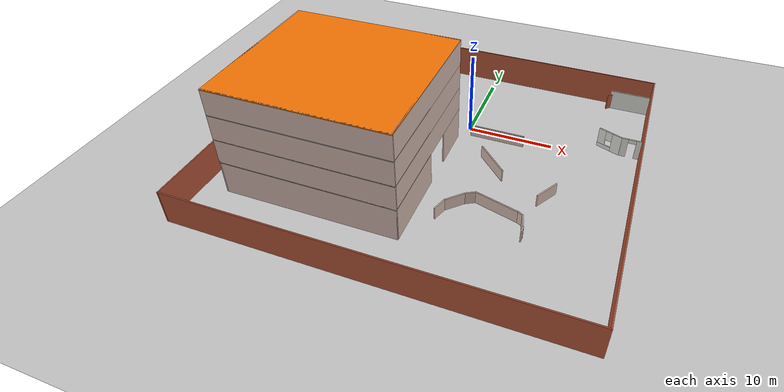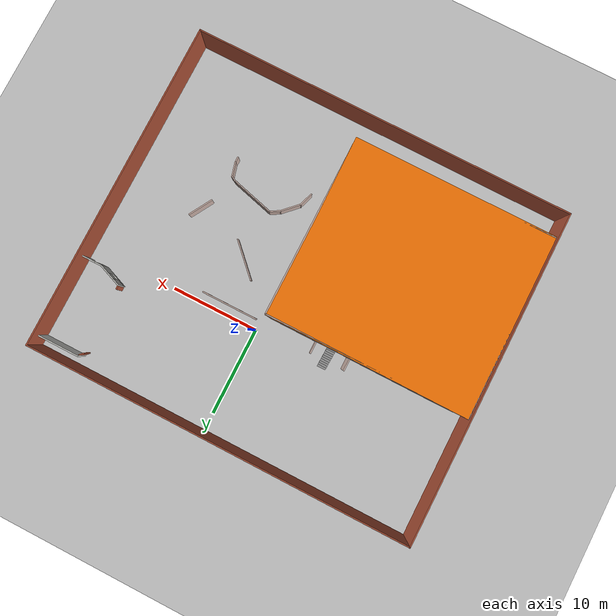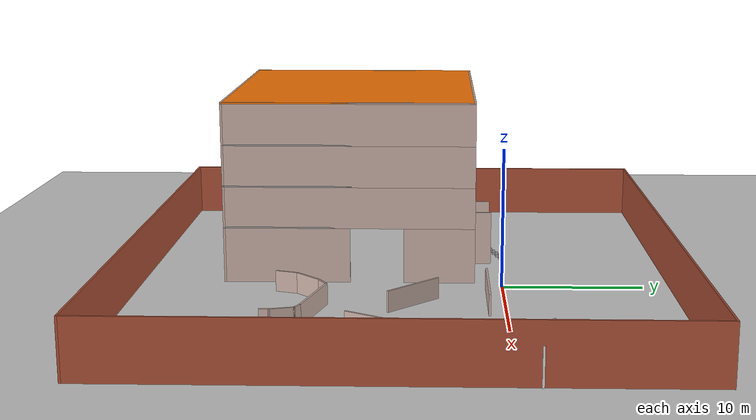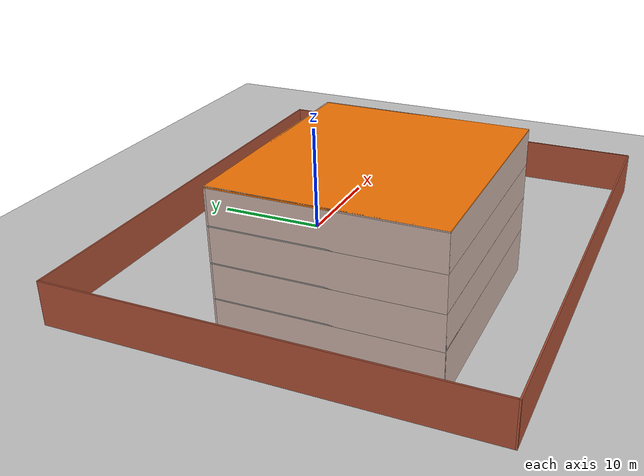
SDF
<sdf version="1.7">
 <world name="default">
  <model name="ground_plane">
   <static>1</static>
   <link name="link">
    <collision name="collision">
     <geometry><plane><normal>0 0 1</normal><size>100 100</size></plane></geometry>
     <surface><friction><ode><mu>100</mu><mu2>50</mu2></ode></friction></surface>
    </collision>
    <visual name="visual">
     <cast_shadows>0</cast_shadows>
     <geometry><plane><normal>0 0 1</normal><size>100 100</size></plane></geometry>
     <material>
      <script><uri>file://media/materials/scripts/gazebo.material</uri><name>Gazebo/Grey</name></script>
     </material>
    </visual>
   </link>
  </model>
  <model name="building2">
   <pose>-11 -10.325 0 0 -0 0</pose>
   <link name="Floor_0">
    <collision name="Floor_0_Collision">
     <geometry><box><size>20.15 18.15 0.1</size></box></geometry>
     <pose>0 0 0.05 0 -0 0</pose>
    </collision>
    <visual name="Floor_0_Visual">
     <pose>0 0 0.05 0 -0 0</pose>
     <geometry><box><size>20.15 18.15 0.1</size></box></geometry>
     <material>
      <script><uri>file://media/materials/scripts/gazebo.material</uri><name>Gazebo/Grey</name></script>
      <ambient>1 1 1 1</ambient>
     </material>
     <meta><layer>1</layer></meta>
    </visual>
    <pose>-0 -0.675 4 0 -0 0</pose>
   </link>
   <link name="Floor_2">
    <collision name="Floor_2_Collision">
     <geometry><box><size>20.15 18.15 0.1</size></box></geometry>
     <pose>0 0 0.05 0 -0 0</pose>
    </collision>
    <visual name="Floor_2_Visual">
     <pose>0 0 0.05 0 -0 0</pose>
     <geometry><box><size>20.15 18.15 0.1</size></box></geometry>
     <material>
      <script><uri>file://media/materials/scripts/gazebo.material</uri><name>Gazebo/Grey</name></script>
      <ambient>1 1 1 1</ambient>
     </material>
     <meta><layer>2</layer></meta>
    </visual>
    <pose>-0 -0.675 7 0 -0 0</pose>
   </link>
   <link name="Floor_3">
    <collision name="Floor_3_Collision">
     <geometry><box><size>20.15 18.15 0.1</size></box></geometry>
     <pose>0 0 0.05 0 -0 0</pose>
    </collision>
    <visual name="Floor_3_Visual">
     <pose>0 0 0.05 0 -0 0</pose>
     <geometry><box><size>20.15 18.15 0.1</size></box></geometry>
     <material>
      <script><uri>file://media/materials/scripts/gazebo.material</uri><name>Gazebo/Grey</name></script>
      <ambient>1 1 1 1</ambient>
     </material>
     <meta><layer>3</layer></meta>
    </visual>
    <pose>-0 -0.675 10 0 -0 0</pose>
   </link>
   <link name="Floor_8">
    <collision name="Floor_8_Collision">
     <geometry><box><size>20.15 18.15 0.1</size></box></geometry>
     <pose>0 0 0.05 0 -0 0</pose>
    </collision>
    <visual name="Floor_8_Visual">
     <pose>0 0 0.05 0 -0 0</pose>
     <geometry><box><size>20.15 18.15 0.1</size></box></geometry>
     <material>
      <script><uri>file://media/materials/scripts/gazebo.material</uri><name>Gazebo/Grey</name></script>
      <ambient>0.996078 0.47451 0.0196078 1</ambient>
     </material>
     <meta><layer>4</layer></meta>
    </visual>
    <pose>-0 -0.675 13 0 -0 0</pose>
   </link>
   <link name="Wall_11">
    <collision name="Wall_11_Collision">
     <geometry><box><size>1.5 0.15 4</size></box></geometry>
     <pose>0 0 2 0 -0 0</pose>
    </collision>
    <visual name="Wall_11_Visual">
     <pose>0 0 2 0 -0 0</pose>
     <geometry><box><size>1.5 0.15 4</size></box></geometry>
     <material>
      <script><uri>file://media/materials/scripts/gazebo.material</uri><name>Gazebo/Grey</name></script>
      <ambient>0.760784 0.662745 0.627451 1</ambient>
     </material>
     <meta><layer>0</layer></meta>
    </visual>
    <pose>0.8 9 0 0 -0 -1.5708</pose>
   </link>
   <link name="Wall_12">
    <collision name="Wall_12_Collision">
     <geometry><box><size>10.95 0.15 4</size></box></geometry>
     <pose>0 0 2 0 -0 0</pose>
    </collision>
    <visual name="Wall_12_Visual">
     <pose>0 0 2 0 -0 0</pose>
     <geometry><box><size>10.95 0.15 4</size></box></geometry>
     <material>
      <script><uri>file://media/materials/scripts/gazebo.material</uri><name>Gazebo/Grey</name></script>
      <ambient>0.760784 0.662745 0.627451 1</ambient>
     </material>
     <meta><layer>0</layer></meta>
    </visual>
    <pose>-4.6 8.325 0 0 -0 3.14159</pose>
   </link>
   <link name="Wall_14">
    <collision name="Wall_14_Collision">
     <geometry><box><size>18.15 0.15 4</size></box></geometry>
     <pose>0 0 2 0 -0 0</pose>
    </collision>
    <visual name="Wall_14_Visual">
     <pose>0 0 2 0 -0 0</pose>
     <geometry><box><size>18.15 0.15 4</size></box></geometry>
     <material>
      <script><uri>file://media/materials/scripts/gazebo.material</uri><name>Gazebo/Grey</name></script>
      <ambient>0.760784 0.662745 0.627451 1</ambient>
     </material>
     <meta><layer>0</layer></meta>
    </visual>
    <pose>-10 -0.675 0 0 -0 -1.5708</pose>
   </link>
   <link name="Wall_16">
    <collision name="Wall_16_Collision">
     <geometry><box><size>20.15 0.15 4</size></box></geometry>
     <pose>0 0 2 0 -0 0</pose>
    </collision>
    <visual name="Wall_16_Visual">
     <pose>0 0 2 0 -0 0</pose>
     <geometry><box><size>20.15 0.15 4</size></box></geometry>
     <material>
      <script><uri>file://media/materials/scripts/gazebo.material</uri><name>Gazebo/Grey</name></script>
      <ambient>0.760784 0.662745 0.627451 1</ambient>
     </material>
     <meta><layer>0</layer></meta>
    </visual>
    <pose>-0 -9.675 0 0 -0 0</pose>
   </link>
   <link name="Wall_24">
    <collision name="Wall_24_Collision">
     <geometry><box><size>18.15 0.15 3</size></box></geometry>
     <pose>0 0 1.5 0 -0 0</pose>
    </collision>
    <visual name="Wall_24_Visual">
     <pose>0 0 1.5 0 -0 0</pose>
     <geometry><box><size>18.15 0.15 3</size></box></geometry>
     <material>
      <script><uri>file://media/materials/scripts/gazebo.material</uri><name>Gazebo/Grey</name></script>
      <ambient>0.760784 0.662745 0.627451 1</ambient>
     </material>
     <meta><layer>1</layer></meta>
    </visual>
    <pose>-10 -0.675 4 0 -0 -1.5708</pose>
   </link>
   <link name="Wall_25">
    <collision name="Wall_25_Collision">
     <geometry><box><size>20.15 0.15 3</size></box></geometry>
     <pose>0 0 1.5 0 -0 0</pose>
    </collision>
    <visual name="Wall_25_Visual">
     <pose>0 0 1.5 0 -0 0</pose>
     <geometry><box><size>20.15 0.15 3</size></box></geometry>
     <material>
      <script><uri>file://media/materials/scripts/gazebo.material</uri><name>Gazebo/Grey</name></script>
      <ambient>0.760784 0.662745 0.627451 1</ambient>
     </material>
     <meta><layer>1</layer></meta>
    </visual>
    <pose>-0 -9.675 4 0 -0 0</pose>
   </link>
   <link name="Wall_31">
    <collision name="Wall_31_Collision">
     <geometry><box><size>20.15 0.15 3</size></box></geometry>
     <pose>0 0 1.5 0 -0 0</pose>
    </collision>
    <visual name="Wall_31_Visual">
     <pose>0 0 1.5 0 -0 0</pose>
     <geometry><box><size>20.15 0.15 3</size></box></geometry>
     <material>
      <script><uri>file://media/materials/scripts/gazebo.material</uri><name>Gazebo/Grey</name></script>
      <ambient>0.760784 0.662745 0.627451 1</ambient>
     </material>
     <meta><layer>1</layer></meta>
    </visual>
    <pose>-0 8.325 4 0 -0 0</pose>
   </link>
   <link name="Wall_33">
    <collision name="Wall_33_Collision">
     <geometry><box><size>18 0.15 3</size></box></geometry>
     <pose>0 0 1.5 0 -0 0</pose>
    </collision>
    <visual name="Wall_33_Visual">
     <pose>0 0 1.5 0 -0 0</pose>
     <geometry><box><size>18 0.15 3</size></box></geometry>
     <material>
      <script><uri>file://media/materials/scripts/gazebo.material</uri><name>Gazebo/Grey</name></script>
      <ambient>0.760784 0.662745 0.627451 1</ambient>
     </material>
     <meta><layer>1</layer></meta>
    </visual>
    <pose>10 -0.6 4 0 -0 -1.5708</pose>
   </link>
   <link name="Wall_4">
    <collision name="Wall_4_Collision">
     <geometry><box><size>5.15 0.15 4</size></box></geometry>
     <pose>0 0 2 0 -0 0</pose>
    </collision>
    <visual name="Wall_4_Visual">
     <pose>0 0 2 0 -0 0</pose>
     <geometry><box><size>5.15 0.15 4</size></box></geometry>
     <material>
      <script><uri>file://media/materials/scripts/gazebo.material</uri><name>Gazebo/Grey</name></script>
      <ambient>0.760784 0.662745 0.627451 1</ambient>
     </material>
     <meta><layer>0</layer></meta>
    </visual>
    <pose>10 5.825 0 0 -0 -1.5708</pose>
   </link>
   <link name="Wall_42">
    <collision name="Wall_42_Collision">
     <geometry><box><size>18.15 0.15 3</size></box></geometry>
     <pose>0 0 1.5 0 -0 0</pose>
    </collision>
    <visual name="Wall_42_Visual">
     <pose>0 0 1.5 0 -0 0</pose>
     <geometry><box><size>18.15 0.15 3</size></box></geometry>
     <material>
      <script><uri>file://media/materials/scripts/gazebo.material</uri><name>Gazebo/Grey</name></script>
      <ambient>0.760784 0.662745 0.627451 1</ambient>
     </material>
     <meta><layer>2</layer></meta>
    </visual>
    <pose>-10 -0.675 7 0 -0 -1.5708</pose>
   </link>
   <link name="Wall_43">
    <collision name="Wall_43_Collision">
     <geometry><box><size>20.15 0.15 3</size></box></geometry>
     <pose>0 0 1.5 0 -0 0</pose>
    </collision>
    <visual name="Wall_43_Visual">
     <pose>0 0 1.5 0 -0 0</pose>
     <geometry><box><size>20.15 0.15 3</size></box></geometry>
     <material>
      <script><uri>file://media/materials/scripts/gazebo.material</uri><name>Gazebo/Grey</name></script>
      <ambient>0.760784 0.662745 0.627451 1</ambient>
     </material>
     <meta><layer>2</layer></meta>
    </visual>
    <pose>-0 -9.675 7 0 -0 0</pose>
   </link>
   <link name="Wall_44">
    <collision name="Wall_44_Collision">
     <geometry><box><size>20.15 0.15 3</size></box></geometry>
     <pose>0 0 1.5 0 -0 0</pose>
    </collision>
    <visual name="Wall_44_Visual">
     <pose>0 0 1.5 0 -0 0</pose>
     <geometry><box><size>20.15 0.15 3</size></box></geometry>
     <material>
      <script><uri>file://media/materials/scripts/gazebo.material</uri><name>Gazebo/Grey</name></script>
      <ambient>0.760784 0.662745 0.627451 1</ambient>
     </material>
     <meta><layer>2</layer></meta>
    </visual>
    <pose>-0 8.325 7 0 -0 0</pose>
   </link>
   <link name="Wall_45">
    <collision name="Wall_45_Collision">
     <geometry><box><size>18 0.15 3</size></box></geometry>
     <pose>0 0 1.5 0 -0 0</pose>
    </collision>
    <visual name="Wall_45_Visual">
     <pose>0 0 1.5 0 -0 0</pose>
     <geometry><box><size>18 0.15 3</size></box></geometry>
     <material>
      <script><uri>file://media/materials/scripts/gazebo.material</uri><name>Gazebo/Grey</name></script>
      <ambient>0.760784 0.662745 0.627451 1</ambient>
     </material>
     <meta><layer>2</layer></meta>
    </visual>
    <pose>10 -0.6 7 0 -0 -1.5708</pose>
   </link>
   <link name="Wall_46">
    <collision name="Wall_46_Collision">
     <geometry><box><size>18.15 0.15 3</size></box></geometry>
     <pose>0 0 1.5 0 -0 0</pose>
    </collision>
    <visual name="Wall_46_Visual">
     <pose>0 0 1.5 0 -0 0</pose>
     <geometry><box><size>18.15 0.15 3</size></box></geometry>
     <material>
      <script><uri>file://media/materials/scripts/gazebo.material</uri><name>Gazebo/Grey</name></script>
      <ambient>0.760784 0.662745 0.627451 1</ambient>
     </material>
     <meta><layer>3</layer></meta>
    </visual>
    <pose>-10 -0.675 10 0 -0 -1.5708</pose>
   </link>
   <link name="Wall_47">
    <collision name="Wall_47_Collision">
     <geometry><box><size>20.15 0.15 3</size></box></geometry>
     <pose>0 0 1.5 0 -0 0</pose>
    </collision>
    <visual name="Wall_47_Visual">
     <pose>0 0 1.5 0 -0 0</pose>
     <geometry><box><size>20.15 0.15 3</size></box></geometry>
     <material>
      <script><uri>file://media/materials/scripts/gazebo.material</uri><name>Gazebo/Grey</name></script>
      <ambient>0.760784 0.662745 0.627451 1</ambient>
     </material>
     <meta><layer>3</layer></meta>
    </visual>
    <pose>-0 -9.675 10 0 -0 0</pose>
   </link>
   <link name="Wall_48">
    <collision name="Wall_48_Collision">
     <geometry><box><size>20.15 0.15 3</size></box></geometry>
     <pose>0 0 1.5 0 -0 0</pose>
    </collision>
    <visual name="Wall_48_Visual">
     <pose>0 0 1.5 0 -0 0</pose>
     <geometry><box><size>20.15 0.15 3</size></box></geometry>
     <material>
      <script><uri>file://media/materials/scripts/gazebo.material</uri><name>Gazebo/Grey</name></script>
      <ambient>0.760784 0.662745 0.627451 1</ambient>
     </material>
     <meta><layer>3</layer></meta>
    </visual>
    <pose>-0 8.325 10 0 -0 0</pose>
   </link>
   <link name="Wall_49">
    <collision name="Wall_49_Collision">
     <geometry><box><size>18 0.15 3</size></box></geometry>
     <pose>0 0 1.5 0 -0 0</pose>
    </collision>
    <visual name="Wall_49_Visual">
     <pose>0 0 1.5 0 -0 0</pose>
     <geometry><box><size>18 0.15 3</size></box></geometry>
     <material>
      <script><uri>file://media/materials/scripts/gazebo.material</uri><name>Gazebo/Grey</name></script>
      <ambient>0.760784 0.662745 0.627451 1</ambient>
     </material>
     <meta><layer>3</layer></meta>
    </visual>
    <pose>10 -0.6 10 0 -0 -1.5708</pose>
   </link>
   <link name="Wall_6">
    <collision name="Wall_6_Collision">
     <geometry><box><size>9.15 0.15 4</size></box></geometry>
     <pose>0 0 2 0 -0 0</pose>
    </collision>
    <visual name="Wall_6_Visual">
     <pose>0 0 2 0 -0 0</pose>
     <geometry><box><size>9.15 0.15 4</size></box></geometry>
     <material>
      <script><uri>file://media/materials/scripts/gazebo.material</uri><name>Gazebo/Grey</name></script>
      <ambient>0.760784 0.662745 0.627451 1</ambient>
     </material>
     <meta><layer>0</layer></meta>
    </visual>
    <pose>10 -5.175 0 0 -0 -1.5708</pose>
   </link>
   <link name="Wall_76">
    <collision name="Wall_76_Collision">
     <geometry><box><size>18.15 0.15 0.1</size></box></geometry>
     <pose>0 0 0.05 0 -0 0</pose>
    </collision>
    <visual name="Wall_76_Visual">
     <pose>0 0 0.05 0 -0 0</pose>
     <geometry><box><size>18.15 0.15 0.1</size></box></geometry>
     <material>
      <script><uri>file://media/materials/scripts/gazebo.material</uri><name>Gazebo/Grey</name></script>
      <ambient>0.760784 0.662745 0.627451 1</ambient>
     </material>
     <meta><layer>4</layer></meta>
    </visual>
    <pose>-10 -0.675 13 0 -0 -1.5708</pose>
   </link>
   <link name="Wall_77">
    <collision name="Wall_77_Collision">
     <geometry><box><size>20.15 0.15 0.1</size></box></geometry>
     <pose>0 0 0.05 0 -0 0</pose>
    </collision>
    <visual name="Wall_77_Visual">
     <pose>0 0 0.05 0 -0 0</pose>
     <geometry><box><size>20.15 0.15 0.1</size></box></geometry>
     <material>
      <script><uri>file://media/materials/scripts/gazebo.material</uri><name>Gazebo/Grey</name></script>
      <ambient>0.760784 0.662745 0.627451 1</ambient>
     </material>
     <meta><layer>4</layer></meta>
    </visual>
    <pose>-0 -9.675 13 0 -0 0</pose>
   </link>
   <link name="Wall_78">
    <collision name="Wall_78_Collision">
     <geometry><box><size>20.15 0.15 0.1</size></box></geometry>
     <pose>0 0 0.05 0 -0 0</pose>
    </collision>
    <visual name="Wall_78_Visual">
     <pose>0 0 0.05 0 -0 0</pose>
     <geometry><box><size>20.15 0.15 0.1</size></box></geometry>
     <material>
      <script><uri>file://media/materials/scripts/gazebo.material</uri><name>Gazebo/Grey</name></script>
      <ambient>0.760784 0.662745 0.627451 1</ambient>
     </material>
     <meta><layer>4</layer></meta>
    </visual>
    <pose>-0 8.325 13 0 -0 0</pose>
   </link>
   <link name="Wall_79">
    <collision name="Wall_79_Collision">
     <geometry><box><size>18 0.15 0.1</size></box></geometry>
     <pose>0 0 0.05 0 -0 0</pose>
    </collision>
    <visual name="Wall_79_Visual">
     <pose>0 0 0.05 0 -0 0</pose>
     <geometry><box><size>18 0.15 0.1</size></box></geometry>
     <material>
      <script><uri>file://media/materials/scripts/gazebo.material</uri><name>Gazebo/Grey</name></script>
      <ambient>0.760784 0.662745 0.627451 1</ambient>
     </material>
     <meta><layer>4</layer></meta>
    </visual>
    <pose>10 -0.6 13 0 -0 -1.5708</pose>
   </link>
   <link name="Wall_8">
    <collision name="Wall_8_Collision">
     <geometry><box><size>5.5 0.15 4</size></box></geometry>
     <pose>0 0 2 0 -0 0</pose>
    </collision>
    <visual name="Wall_8_Visual">
     <pose>0 0 2 0 -0 0</pose>
     <geometry><box><size>5.5 0.15 4</size></box></geometry>
     <material>
      <script><uri>file://media/materials/scripts/gazebo.material</uri><name>Gazebo/Grey</name></script>
      <ambient>0.760784 0.662745 0.627451 1</ambient>
     </material>
     <meta><layer>0</layer></meta>
    </visual>
    <pose>7.325 8.325 0 0 -0 3.14159</pose>
   </link>
   <link name="Wall_9">
    <collision name="Wall_9_Collision">
     <geometry><box><size>1.5 0.15 4</size></box></geometry>
     <pose>0 0 2 0 -0 0</pose>
    </collision>
    <visual name="Wall_9_Visual">
     <pose>0 0 2 0 -0 0</pose>
     <geometry><box><size>1.5 0.15 4</size></box></geometry>
     <material>
      <script><uri>file://media/materials/scripts/gazebo.material</uri><name>Gazebo/Grey</name></script>
      <ambient>0.760784 0.662745 0.627451 1</ambient>
     </material>
     <meta><layer>0</layer></meta>
    </visual>
    <pose>4.65 9 0 0 -0 1.5708</pose>
   </link>
   <static>1</static>
  </model>
  <model name="wall11">
   <pose>-2 -7 0 0 -0 0</pose>
   <link name="Wall_0">
    <collision name="Wall_0_Collision">
     <geometry><box><size>44.15 0.15 4</size></box></geometry>
     <pose>0 0 2 0 -0 0</pose>
    </collision>
    <visual name="Wall_0_Visual">
     <pose>0 0 2 0 -0 0</pose>
     <geometry><box><size>44.15 0.15 4</size></box></geometry>
     <material>
      <script><uri>file://media/materials/scripts/gazebo.material</uri><name>Gazebo/Bricks</name></script>
      <ambient>1 1 1 1</ambient>
     </material>
     <meta><layer>0</layer></meta>
    </visual>
    <pose>0 19 0 0 -0 0</pose>
   </link>
   <link name="Wall_2">
    <collision name="Wall_2_Collision">
     <geometry><box><size>38.15 0.15 4</size></box></geometry>
     <pose>0 0 2 0 -0 0</pose>
    </collision>
    <visual name="Wall_2_Visual">
     <pose>0 0 2 0 -0 0</pose>
     <geometry><box><size>38.15 0.15 4</size></box></geometry>
     <material>
      <script><uri>file://media/materials/scripts/gazebo.material</uri><name>Gazebo/Bricks</name></script>
      <ambient>1 1 1 1</ambient>
     </material>
     <meta><layer>0</layer></meta>
    </visual>
    <pose>22 0 0 0 -0 -1.5708</pose>
   </link>
   <link name="Wall_4">
    <collision name="Wall_4_Collision">
     <geometry><box><size>44.15 0.15 4</size></box></geometry>
     <pose>0 0 2 0 -0 0</pose>
    </collision>
    <visual name="Wall_4_Visual">
     <pose>0 0 2 0 -0 0</pose>
     <geometry><box><size>44.15 0.15 4</size></box></geometry>
     <material>
      <script><uri>file://media/materials/scripts/gazebo.material</uri><name>Gazebo/Bricks</name></script>
      <ambient>1 1 1 1</ambient>
     </material>
     <meta><layer>0</layer></meta>
    </visual>
    <pose>0 -19 0 0 -0 3.14159</pose>
   </link>
   <link name="Wall_6">
    <collision name="Wall_6_Collision">
     <geometry><box><size>38.15 0.15 4</size></box></geometry>
     <pose>0 0 2 0 -0 0</pose>
    </collision>
    <visual name="Wall_6_Visual">
     <pose>0 0 2 0 -0 0</pose>
     <geometry><box><size>38.15 0.15 4</size></box></geometry>
     <material>
      <script><uri>file://media/materials/scripts/gazebo.material</uri><name>Gazebo/Bricks</name></script>
      <ambient>1 1 1 1</ambient>
     </material>
     <meta><layer>0</layer></meta>
    </visual>
    <pose>-22 0 0 0 -0 1.5708</pose>
   </link>
   <static>1</static>
  </model>
  <model name="wall12">
   <pose>6.34105 -8.55443 0 0 -0 0</pose>
   <link name="Wall_0">
    <collision name="Wall_0_Collision">
     <geometry><box><size>1.73114 0.15 1.5</size></box></geometry>
     <pose>0 0 0.75 0 -0 0</pose>
    </collision>
    <visual name="Wall_0_Visual">
     <pose>0 0 0.75 0 -0 0</pose>
     <geometry><box><size>1.73114 0.15 1.5</size></box></geometry>
     <material>
      <script><uri>file://media/materials/scripts/gazebo.material</uri><name>Gazebo/Grey</name></script>
      <ambient>0.760784 0.662745 0.627451 1</ambient>
     </material>
     <meta><layer>0</layer></meta>
    </visual>
    <pose>-4.71274 -6.64107 0 0 -0 1.24905</pose>
   </link>
   <link name="Wall_13">
    <collision name="Wall_13_Collision">
     <geometry><box><size>6.5 0.15 1.5</size></box></geometry>
     <pose>0 0 0.75 0 -0 0</pose>
    </collision>
    <visual name="Wall_13_Visual">
     <pose>0 0 0.75 0 -0 0</pose>
     <geometry><box><size>6.5 0.15 1.5</size></box></geometry>
     <material>
      <script><uri>file://media/materials/scripts/gazebo.material</uri><name>Gazebo/Grey</name></script>
      <ambient>0.760784 0.662745 0.627451 1</ambient>
     </material>
     <meta><layer>0</layer></meta>
    </visual>
    <pose>-2.67774 7.41093 0 0 -0 0</pose>
   </link>
   <link name="Wall_15">
    <collision name="Wall_15_Collision">
     <geometry><box><size>4.75 0.15 1.5</size></box></geometry>
     <pose>0 0 0.75 0 -0 0</pose>
    </collision>
    <visual name="Wall_15_Visual">
     <pose>0 0 0.75 0 -0 0</pose>
     <geometry><box><size>4.75 0.15 1.5</size></box></geometry>
     <material>
      <script><uri>file://media/materials/scripts/gazebo.material</uri><name>Gazebo/Grey</name></script>
      <ambient>0.760784 0.662745 0.627451 1</ambient>
     </material>
     <meta><layer>0</layer></meta>
    </visual>
    <pose>-1.78524 2.28593 0 0 -0 -0.785244</pose>
   </link>
   <link name="Wall_2">
    <collision name="Wall_2_Collision">
     <geometry><box><size>2.5 0.15 1.5</size></box></geometry>
     <pose>0 0 0.75 0 -0 0</pose>
    </collision>
    <visual name="Wall_2_Visual">
     <pose>0 0 0.75 0 -0 0</pose>
     <geometry><box><size>2.5 0.15 1.5</size></box></geometry>
     <material>
      <script><uri>file://media/materials/scripts/gazebo.material</uri><name>Gazebo/Grey</name></script>
      <ambient>0.760784 0.662745 0.627451 1</ambient>
     </material>
     <meta><layer>0</layer></meta>
    </visual>
    <pose>-3.63175 -5.06007 0 0 -0 0.785398</pose>
   </link>
   <link name="Wall_3">
    <collision name="Wall_3_Collision">
     <geometry><box><size>1.25 0.15 1.5</size></box></geometry>
     <pose>0 0 0.75 0 -0 0</pose>
    </collision>
    <visual name="Wall_3_Visual">
     <pose>0 0 0.75 0 -0 0</pose>
     <geometry><box><size>1.25 0.15 1.5</size></box></geometry>
     <material>
      <script><uri>file://media/materials/scripts/gazebo.material</uri><name>Gazebo/Grey</name></script>
      <ambient>0.760784 0.662745 0.627451 1</ambient>
     </material>
     <meta><layer>0</layer></meta>
    </visual>
    <pose>-2.32475 -3.95407 0 0 -0 0.523884</pose>
   </link>
   <link name="Wall_5">
    <collision name="Wall_5_Collision">
     <geometry><box><size>0.75 0.15 1.5</size></box></geometry>
     <pose>0 0 0.75 0 -0 0</pose>
    </collision>
    <visual name="Wall_5_Visual">
     <pose>0 0 0.75 0 -0 0</pose>
     <geometry><box><size>0.75 0.15 1.5</size></box></geometry>
     <material>
      <script><uri>file://media/materials/scripts/gazebo.material</uri><name>Gazebo/Grey</name></script>
      <ambient>0.760784 0.662745 0.627451 1</ambient>
     </material>
     <meta><layer>0</layer></meta>
    </visual>
    <pose>4.07425 -7.09807 0 0 -0 1.5708</pose>
   </link>
   <link name="Wall_6">
    <collision name="Wall_6_Collision">
     <geometry><box><size>1.75 0.15 1.5</size></box></geometry>
     <pose>0 0 0.75 0 -0 0</pose>
    </collision>
    <visual name="Wall_6_Visual">
     <pose>0 0 0.75 0 -0 0</pose>
     <geometry><box><size>1.75 0.15 1.5</size></box></geometry>
     <material>
      <script><uri>file://media/materials/scripts/gazebo.material</uri><name>Gazebo/Grey</name></script>
      <ambient>0.760784 0.662745 0.627451 1</ambient>
     </material>
     <meta><layer>0</layer></meta>
    </visual>
    <pose>3.86726 -6.02557 0 0 -0 1.83261</pose>
   </link>
   <link name="Wall_7">
    <collision name="Wall_7_Collision">
     <geometry><box><size>0.75 0.15 1.5</size></box></geometry>
     <pose>0 0 0.75 0 -0 0</pose>
    </collision>
    <visual name="Wall_7_Visual">
     <pose>0 0 0.75 0 -0 0</pose>
     <geometry><box><size>0.75 0.15 1.5</size></box></geometry>
     <material>
      <script><uri>file://media/materials/scripts/gazebo.material</uri><name>Gazebo/Grey</name></script>
      <ambient>0.760784 0.662745 0.627451 1</ambient>
     </material>
     <meta><layer>0</layer></meta>
    </visual>
    <pose>3.40026 -5.10307 0 0 -0 2.61831</pose>
   </link>
   <link name="Wall_9">
    <collision name="Wall_9_Collision">
     <geometry><box><size>3 0.15 1.5</size></box></geometry>
     <pose>0 0 0.75 0 -0 0</pose>
    </collision>
    <visual name="Wall_9_Visual">
     <pose>0 0 0.75 0 -0 0</pose>
     <geometry><box><size>3 0.15 1.5</size></box></geometry>
     <material>
      <script><uri>file://media/materials/scripts/gazebo.material</uri><name>Gazebo/Grey</name></script>
      <ambient>0.760784 0.662745 0.627451 1</ambient>
     </material>
     <meta><layer>0</layer></meta>
    </visual>
    <pose>5.11275 -0.631066 0 0 -0 1.04717</pose>
   </link>
   <static>1</static>
  </model>
  <model name="wall1">
   <pose>6.97273 -12.8415 0 0 0 -0.014727</pose>
   <link name="Wall_0">
    <collision name="Wall_0_Collision">
     <geometry><box><size>5.09773 0.15 1.5</size></box></geometry>
     <pose>0 0 0.75 0 -0 0</pose>
    </collision>
    <visual name="Wall_0_Visual">
     <pose>0 0 0.75 0 -0 0</pose>
     <geometry><box><size>5.09773 0.15 1.5</size></box></geometry>
     <material>
      <script><uri>file://media/materials/scripts/gazebo.material</uri><name>Gazebo/Grey</name></script>
      <ambient>0.760784 0.662745 0.627451 1</ambient>
     </material>
     <meta><layer>0</layer></meta>
    </visual>
    <pose>0 0 0 0 -0 -0.244979</pose>
   </link>
   <static>1</static>
  </model>
  <model name="stair">
   <pose>-7.21313 -1.43436 0 0 -0 0</pose>
   <link name="Stairs_1">
    <visual name="Stairs_1_Visual_0">
     <pose>-0.987367 1.63333 0.083333 0 -0 0</pose>
     <geometry><box><size>1 0.233333 0.166667</size></box></geometry>
     <material>
      <script><uri>file://media/materials/scripts/gazebo.material</uri><name>Gazebo/Grey</name></script>
      <ambient>1 1 1 1</ambient>
     </material>
     <meta><layer>0</layer></meta>
    </visual>
    <collision name="Stairs_1_Collision_0">
     <geometry><box><size>1 0.233333 0.166667</size></box></geometry>
     <pose>-0.987367 1.63333 0.083333 0 -0 0</pose>
    </collision>
    <visual name="Stairs_1_Visual_1">
     <pose>-0.987367 1.4 0.25 0 -0 0</pose>
     <geometry><box><size>1 0.233333 0.166667</size></box></geometry>
     <material>
      <script><uri>file://media/materials/scripts/gazebo.material</uri><name>Gazebo/Grey</name></script>
      <ambient>1 1 1 1</ambient>
     </material>
     <meta><layer>0</layer></meta>
    </visual>
    <collision name="Stairs_1_Collision_1">
     <geometry><box><size>1 0.233333 0.166667</size></box></geometry>
     <pose>-0.987367 1.4 0.25 0 -0 0</pose>
    </collision>
    <visual name="Stairs_1_Visual_2">
     <pose>-0.987367 1.16667 0.416667 0 -0 0</pose>
     <geometry><box><size>1 0.233333 0.166667</size></box></geometry>
     <material>
      <script><uri>file://media/materials/scripts/gazebo.material</uri><name>Gazebo/Grey</name></script>
      <ambient>1 1 1 1</ambient>
     </material>
     <meta><layer>0</layer></meta>
    </visual>
    <collision name="Stairs_1_Collision_2">
     <geometry><box><size>1 0.233333 0.166667</size></box></geometry>
     <pose>-0.987367 1.16667 0.416667 0 -0 0</pose>
    </collision>
    <visual name="Stairs_1_Visual_3">
     <pose>-0.987367 0.933333 0.583333 0 -0 0</pose>
     <geometry><box><size>1 0.233333 0.166667</size></box></geometry>
     <material>
      <script><uri>file://media/materials/scripts/gazebo.material</uri><name>Gazebo/Grey</name></script>
      <ambient>1 1 1 1</ambient>
     </material>
     <meta><layer>0</layer></meta>
    </visual>
    <collision name="Stairs_1_Collision_3">
     <geometry><box><size>1 0.233333 0.166667</size></box></geometry>
     <pose>-0.987367 0.933333 0.583333 0 -0 0</pose>
    </collision>
    <visual name="Stairs_1_Visual_4">
     <pose>-0.987367 0.7 0.75 0 -0 0</pose>
     <geometry><box><size>1 0.233333 0.166667</size></box></geometry>
     <material>
      <script><uri>file://media/materials/scripts/gazebo.material</uri><name>Gazebo/Grey</name></script>
      <ambient>1 1 1 1</ambient>
     </material>
     <meta><layer>0</layer></meta>
    </visual>
    <collision name="Stairs_1_Collision_4">
     <geometry><box><size>1 0.233333 0.166667</size></box></geometry>
     <pose>-0.987367 0.7 0.75 0 -0 0</pose>
    </collision>
    <visual name="Stairs_1_Visual_5">
     <pose>-0.987367 0.466667 0.916667 0 -0 0</pose>
     <geometry><box><size>1 0.233333 0.166667</size></box></geometry>
     <material>
      <script><uri>file://media/materials/scripts/gazebo.material</uri><name>Gazebo/Grey</name></script>
      <ambient>1 1 1 1</ambient>
     </material>
     <meta><layer>0</layer></meta>
    </visual>
    <collision name="Stairs_1_Collision_5">
     <geometry><box><size>1 0.233333 0.166667</size></box></geometry>
     <pose>-0.987367 0.466667 0.916667 0 -0 0</pose>
    </collision>
    <visual name="Stairs_1_Visual_6">
     <pose>-0.987367 0.233333 1.08333 0 -0 0</pose>
     <geometry><box><size>1 0.233333 0.166667</size></box></geometry>
     <material>
      <script><uri>file://media/materials/scripts/gazebo.material</uri><name>Gazebo/Grey</name></script>
      <ambient>1 1 1 1</ambient>
     </material>
     <meta><layer>0</layer></meta>
    </visual>
    <collision name="Stairs_1_Collision_6">
     <geometry><box><size>1 0.233333 0.166667</size></box></geometry>
     <pose>-0.987367 0.233333 1.08333 0 -0 0</pose>
    </collision>
    <visual name="Stairs_1_Visual_7">
     <pose>-0.987367 -0 1.25 0 -0 0</pose>
     <geometry><box><size>1 0.233333 0.166667</size></box></geometry>
     <material>
      <script><uri>file://media/materials/scripts/gazebo.material</uri><name>Gazebo/Grey</name></script>
      <ambient>1 1 1 1</ambient>
     </material>
     <meta><layer>0</layer></meta>
    </visual>
    <collision name="Stairs_1_Collision_7">
     <geometry><box><size>1 0.233333 0.166667</size></box></geometry>
     <pose>-0.987367 -0 1.25 0 -0 0</pose>
    </collision>
    <visual name="Stairs_1_Visual_8">
     <pose>-0.987367 -0.233333 1.41667 0 -0 0</pose>
     <geometry><box><size>1 0.233333 0.166667</size></box></geometry>
     <material>
      <script><uri>file://media/materials/scripts/gazebo.material</uri><name>Gazebo/Grey</name></script>
      <ambient>1 1 1 1</ambient>
     </material>
     <meta><layer>0</layer></meta>
    </visual>
    <collision name="Stairs_1_Collision_8">
     <geometry><box><size>1 0.233333 0.166667</size></box></geometry>
     <pose>-0.987367 -0.233333 1.41667 0 -0 0</pose>
    </collision>
    <visual name="Stairs_1_Visual_9">
     <pose>-0.987367 -0.466667 1.58333 0 -0 0</pose>
     <geometry><box><size>1 0.233333 0.166667</size></box></geometry>
     <material>
      <script><uri>file://media/materials/scripts/gazebo.material</uri><name>Gazebo/Grey</name></script>
      <ambient>1 1 1 1</ambient>
     </material>
     <meta><layer>0</layer></meta>
    </visual>
    <collision name="Stairs_1_Collision_9">
     <geometry><box><size>1 0.233333 0.166667</size></box></geometry>
     <pose>-0.987367 -0.466667 1.58333 0 -0 0</pose>
    </collision>
    <visual name="Stairs_1_Visual_10">
     <pose>-0.987367 -0.7 1.75 0 -0 0</pose>
     <geometry><box><size>1 0.233333 0.166667</size></box></geometry>
     <material>
      <script><uri>file://media/materials/scripts/gazebo.material</uri><name>Gazebo/Grey</name></script>
      <ambient>1 1 1 1</ambient>
     </material>
     <meta><layer>0</layer></meta>
    </visual>
    <collision name="Stairs_1_Collision_10">
     <geometry><box><size>1 0.233333 0.166667</size></box></geometry>
     <pose>-0.987367 -0.7 1.75 0 -0 0</pose>
    </collision>
    <visual name="Stairs_1_Visual_11">
     <pose>-0.987367 -0.933334 1.91667 0 -0 0</pose>
     <geometry><box><size>1 0.233333 0.166667</size></box></geometry>
     <material>
      <script><uri>file://media/materials/scripts/gazebo.material</uri><name>Gazebo/Grey</name></script>
      <ambient>1 1 1 1</ambient>
     </material>
     <meta><layer>0</layer></meta>
    </visual>
    <collision name="Stairs_1_Collision_11">
     <geometry><box><size>1 0.233333 0.166667</size></box></geometry>
     <pose>-0.987367 -0.933334 1.91667 0 -0 0</pose>
    </collision>
    <visual name="Stairs_1_Visual_12">
     <pose>-0.987367 -1.16667 2.08333 0 -0 0</pose>
     <geometry><box><size>1 0.233333 0.166667</size></box></geometry>
     <material>
      <script><uri>file://media/materials/scripts/gazebo.material</uri><name>Gazebo/Grey</name></script>
      <ambient>1 1 1 1</ambient>
     </material>
     <meta><layer>0</layer></meta>
    </visual>
    <collision name="Stairs_1_Collision_12">
     <geometry><box><size>1 0.233333 0.166667</size></box></geometry>
     <pose>-0.987367 -1.16667 2.08333 0 -0 0</pose>
    </collision>
    <visual name="Stairs_1_Visual_13">
     <pose>-0.987367 -1.4 2.25 0 -0 0</pose>
     <geometry><box><size>1 0.233333 0.166667</size></box></geometry>
     <material>
      <script><uri>file://media/materials/scripts/gazebo.material</uri><name>Gazebo/Grey</name></script>
      <ambient>1 1 1 1</ambient>
     </material>
     <meta><layer>0</layer></meta>
    </visual>
    <collision name="Stairs_1_Collision_13">
     <geometry><box><size>1 0.233333 0.166667</size></box></geometry>
     <pose>-0.987367 -1.4 2.25 0 -0 0</pose>
    </collision>
    <visual name="Stairs_1_Visual_14">
     <pose>-0.987367 -1.63333 2.41667 0 -0 0</pose>
     <geometry><box><size>1 0.233333 0.166667</size></box></geometry>
     <material>
      <script><uri>file://media/materials/scripts/gazebo.material</uri><name>Gazebo/Grey</name></script>
      <ambient>1 1 1 1</ambient>
     </material>
     <meta><layer>0</layer></meta>
    </visual>
    <collision name="Stairs_1_Collision_14">
     <geometry><box><size>1 0.233333 0.166667</size></box></geometry>
     <pose>-0.987367 -1.63333 2.41667 0 -0 0</pose>
    </collision>
   </link>
   <static>1</static>
  </model>
  <model name="aim_area">
   <link name="Wall_10">
    <pose>6.351 -3.13846 0 0 -0 2.76762</pose>
    <visual name="Wall_10_Visual_1">
     <pose>0.58795 0 0.25 0 -0 0</pose>
     <geometry><box><size>1.70589 0.15 0.5</size></box></geometry>
     <material>
      <script><uri>file://media/materials/scripts/gazebo.material</uri><name>Gazebo/CeilingTiled</name></script>
      <ambient>1 1 1 1</ambient>
      <shader type="pixel"/>
     </material>
     <meta><layer>0</layer></meta>
    </visual>
    <visual name="Wall_10_Visual_0">
     <pose>-0.852943 0 1.25 0 -0 0</pose>
     <geometry><box><size>1.1759 0.15 2.5</size></box></geometry>
     <material>
      <script><uri>file://media/materials/scripts/gazebo.material</uri><name>Gazebo/CeilingTiled</name></script>
      <ambient>1 1 1 1</ambient>
      <shader type="pixel"/>
     </material>
     <meta><layer>0</layer></meta>
    </visual>
    <visual name="Wall_10_Visual_3">
     <pose>0.135006 0 1.9 0 -0 0</pose>
     <geometry><box><size>0.8 0.15 1.2</size></box></geometry>
     <material>
      <script><uri>file://media/materials/scripts/gazebo.material</uri><name>Gazebo/CeilingTiled</name></script>
      <ambient>1 1 1 1</ambient>
      <shader type="pixel"/>
     </material>
     <meta><layer>0</layer></meta>
    </visual>
    <visual name="Wall_10_Visual_2">
     <pose>0.98795 0 1.5 0 -0 0</pose>
     <geometry><box><size>0.905886 0.15 2</size></box></geometry>
     <material>
      <script><uri>file://media/materials/scripts/gazebo.material</uri><name>Gazebo/CeilingTiled</name></script>
      <ambient>1 1 1 1</ambient>
      <shader type="pixel"/>
     </material>
     <meta><layer>0</layer></meta>
    </visual>
    <collision name="Wall_10_Collision_0">
     <pose>-0.852943 0 1.25 0 -0 0</pose>
     <geometry><box><size>1.1759 0.15 2.5</size></box></geometry>
     <surface>
      <friction>
       <ode><mu>1</mu><mu2>1</mu2><fdir1>0 0 0</fdir1><slip1>0</slip1><slip2>0</slip2></ode>
       <torsional>
        <coefficient>1</coefficient>
        <patch_radius>0</patch_radius>
        <surface_radius>0</surface_radius>
        <use_patch_radius>1</use_patch_radius>
        <ode><slip>0</slip></ode>
       </torsional>
      </friction>
      <bounce><restitution_coefficient>0</restitution_coefficient><threshold>1e+06</threshold></bounce>
      <contact>
       <collide_without_contact>0</collide_without_contact>
       <collide_without_contact_bitmask>1</collide_without_contact_bitmask>
       <collide_bitmask>1</collide_bitmask>
       <ode>
        <soft_cfm>0</soft_cfm>
        <soft_erp>0.2</soft_erp>
        <kp>1e+13</kp>
        <kd>1</kd>
        <max_vel>0.01</max_vel>
        <min_depth>0</min_depth>
       </ode>
       <bullet>
        <split_impulse>1</split_impulse>
        <split_impulse_penetration_threshold>-0.01</split_impulse_penetration_threshold>
        <soft_cfm>0</soft_cfm>
        <soft_erp>0.2</soft_erp>
        <kp>1e+13</kp>
        <kd>1</kd>
       </bullet>
      </contact>
     </surface>
    </collision>
    <collision name="Wall_10_Collision_1">
     <pose>0.58795 0 0.25 0 -0 0</pose>
     <geometry><box><size>1.70589 0.15 0.5</size></box></geometry>
     <surface>
      <friction>
       <ode><mu>1</mu><mu2>1</mu2><fdir1>0 0 0</fdir1><slip1>0</slip1><slip2>0</slip2></ode>
       <torsional>
        <coefficient>1</coefficient>
        <patch_radius>0</patch_radius>
        <surface_radius>0</surface_radius>
        <use_patch_radius>1</use_patch_radius>
        <ode><slip>0</slip></ode>
       </torsional>
      </friction>
      <bounce><restitution_coefficient>0</restitution_coefficient><threshold>1e+06</threshold></bounce>
      <contact>
       <collide_without_contact>0</collide_without_contact>
       <collide_without_contact_bitmask>1</collide_without_contact_bitmask>
       <collide_bitmask>1</collide_bitmask>
       <ode>
        <soft_cfm>0</soft_cfm>
        <soft_erp>0.2</soft_erp>
        <kp>1e+13</kp>
        <kd>1</kd>
        <max_vel>0.01</max_vel>
        <min_depth>0</min_depth>
       </ode>
       <bullet>
        <split_impulse>1</split_impulse>
        <split_impulse_penetration_threshold>-0.01</split_impulse_penetration_threshold>
        <soft_cfm>0</soft_cfm>
        <soft_erp>0.2</soft_erp>
        <kp>1e+13</kp>
        <kd>1</kd>
       </bullet>
      </contact>
     </surface>
    </collision>
    <collision name="Wall_10_Collision_2">
     <pose>0.98795 0 1.5 0 -0 0</pose>
     <geometry><box><size>0.905886 0.15 2</size></box></geometry>
     <surface>
      <friction>
       <ode><mu>1</mu><mu2>1</mu2><fdir1>0 0 0</fdir1><slip1>0</slip1><slip2>0</slip2></ode>
       <torsional>
        <coefficient>1</coefficient>
        <patch_radius>0</patch_radius>
        <surface_radius>0</surface_radius>
        <use_patch_radius>1</use_patch_radius>
        <ode><slip>0</slip></ode>
       </torsional>
      </friction>
      <bounce><restitution_coefficient>0</restitution_coefficient><threshold>1e+06</threshold></bounce>
      <contact>
       <collide_without_contact>0</collide_without_contact>
       <collide_without_contact_bitmask>1</collide_without_contact_bitmask>
       <collide_bitmask>1</collide_bitmask>
       <ode>
        <soft_cfm>0</soft_cfm>
        <soft_erp>0.2</soft_erp>
        <kp>1e+13</kp>
        <kd>1</kd>
        <max_vel>0.01</max_vel>
        <min_depth>0</min_depth>
       </ode>
       <bullet>
        <split_impulse>1</split_impulse>
        <split_impulse_penetration_threshold>-0.01</split_impulse_penetration_threshold>
        <soft_cfm>0</soft_cfm>
        <soft_erp>0.2</soft_erp>
        <kp>1e+13</kp>
        <kd>1</kd>
       </bullet>
      </contact>
     </surface>
    </collision>
    <collision name="Wall_10_Collision_3">
     <pose>0.135006 0 1.9 0 -0 0</pose>
     <geometry><box><size>0.8 0.15 1.2</size></box></geometry>
     <surface>
      <friction>
       <ode><mu>1</mu><mu2>1</mu2><fdir1>0 0 0</fdir1><slip1>0</slip1><slip2>0</slip2></ode>
       <torsional>
        <coefficient>1</coefficient>
        <patch_radius>0</patch_radius>
        <surface_radius>0</surface_radius>
        <use_patch_radius>1</use_patch_radius>
        <ode><slip>0</slip></ode>
       </torsional>
      </friction>
      <bounce><restitution_coefficient>0</restitution_coefficient><threshold>1e+06</threshold></bounce>
      <contact>
       <collide_without_contact>0</collide_without_contact>
       <collide_without_contact_bitmask>1</collide_without_contact_bitmask>
       <collide_bitmask>1</collide_bitmask>
       <ode>
        <soft_cfm>0</soft_cfm>
        <soft_erp>0.2</soft_erp>
        <kp>1e+13</kp>
        <kd>1</kd>
        <max_vel>0.01</max_vel>
        <min_depth>0</min_depth>
       </ode>
       <bullet>
        <split_impulse>1</split_impulse>
        <split_impulse_penetration_threshold>-0.01</split_impulse_penetration_threshold>
        <soft_cfm>0</soft_cfm>
        <soft_erp>0.2</soft_erp>
        <kp>1e+13</kp>
        <kd>1</kd>
       </bullet>
      </contact>
     </surface>
    </collision>
   </link>
   <link name="Wall_11">
    <pose>5.1147 -2.35573 0 0 -0 1.5708</pose>
    <inertial>
     <inertia><ixx>0</ixx><ixy>0</ixy><ixz>0</ixz><iyy>0</iyy><iyz>0</iyz><izz>0</izz></inertia>
     <mass>0</mass>
    </inertial>
    <visual name="Wall_11_Visual">
     <pose>0 0 1.05 0 -0 0</pose>
     <geometry><box><size>0.506266 0.15 2.1</size></box></geometry>
     <material>
      <script><uri>file://media/materials/scripts/gazebo.material</uri><name>Gazebo/Bricks</name></script>
      <ambient>1 1 1 1</ambient>
      <shader type="pixel"/>
     </material>
     <meta><layer>0</layer></meta>
    </visual>
    <collision name="Wall_11_Collision">
     <pose>0 0 1.05 0 -0 0</pose>
     <geometry><box><size>0.506266 0.15 2.1</size></box></geometry>
     <surface>
      <friction>
       <ode><mu>1</mu><mu2>1</mu2><fdir1>0 0 0</fdir1><slip1>0</slip1><slip2>0</slip2></ode>
       <torsional>
        <coefficient>1</coefficient>
        <patch_radius>0</patch_radius>
        <surface_radius>0</surface_radius>
        <use_patch_radius>1</use_patch_radius>
        <ode><slip>0</slip></ode>
       </torsional>
      </friction>
      <bounce><restitution_coefficient>0</restitution_coefficient><threshold>1e+06</threshold></bounce>
      <contact>
       <collide_without_contact>0</collide_without_contact>
       <collide_without_contact_bitmask>1</collide_without_contact_bitmask>
       <collide_bitmask>1</collide_bitmask>
       <ode>
        <soft_cfm>0</soft_cfm>
        <soft_erp>0.2</soft_erp>
        <kp>1e+13</kp>
        <kd>1</kd>
        <max_vel>0.01</max_vel>
        <min_depth>0</min_depth>
       </ode>
       <bullet>
        <split_impulse>1</split_impulse>
        <split_impulse_penetration_threshold>-0.01</split_impulse_penetration_threshold>
        <soft_cfm>0</soft_cfm>
        <soft_erp>0.2</soft_erp>
        <kp>1e+13</kp>
        <kd>1</kd>
       </bullet>
      </contact>
     </surface>
    </collision>
   </link>
   <link name="Wall_15">
    <pose>5.14614 5.66775 0 0 -0 0.786576</pose>
    <visual name="Wall_15_Visual">
     <pose>0 0 1 0 -0 0</pose>
     <geometry><box><size>0.75 0.15 2</size></box></geometry>
     <material>
      <script><uri>file://media/materials/scripts/gazebo.material</uri><name>Gazebo/Bricks</name></script>
      <ambient>1 1 1 1</ambient>
      <shader type="pixel"/>
     </material>
     <meta><layer>0</layer></meta>
    </visual>
    <collision name="Wall_15_Collision">
     <pose>0 0 1 0 -0 0</pose>
     <geometry><box><size>0.75 0.15 2</size></box></geometry>
     <surface>
      <friction>
       <ode><mu>1</mu><mu2>1</mu2><fdir1>0 0 0</fdir1><slip1>0</slip1><slip2>0</slip2></ode>
       <torsional>
        <coefficient>1</coefficient>
        <patch_radius>0</patch_radius>
        <surface_radius>0</surface_radius>
        <use_patch_radius>1</use_patch_radius>
        <ode><slip>0</slip></ode>
       </torsional>
      </friction>
      <bounce><restitution_coefficient>0</restitution_coefficient><threshold>1e+06</threshold></bounce>
      <contact>
       <collide_without_contact>0</collide_without_contact>
       <collide_without_contact_bitmask>1</collide_without_contact_bitmask>
       <collide_bitmask>1</collide_bitmask>
       <ode>
        <soft_cfm>0</soft_cfm>
        <soft_erp>0.2</soft_erp>
        <kp>1e+13</kp>
        <kd>1</kd>
        <max_vel>0.01</max_vel>
        <min_depth>0</min_depth>
       </ode>
       <bullet>
        <split_impulse>1</split_impulse>
        <split_impulse_penetration_threshold>-0.01</split_impulse_penetration_threshold>
        <soft_cfm>0</soft_cfm>
        <soft_erp>0.2</soft_erp>
        <kp>1e+13</kp>
        <kd>1</kd>
       </bullet>
      </contact>
     </surface>
    </collision>
   </link>
   <link name="Wall_17">
    <pose>7.54238 5.88204 0 0 0 -8.8e-05</pose>
    <visual name="Wall_17_Visual">
     <pose>0 0 1.25 0 -0 0</pose>
     <geometry><box><size>4.75 0.15 2.5</size></box></geometry>
     <material>
      <script><uri>file://media/materials/scripts/gazebo.material</uri><name>Gazebo/CeilingTiled</name></script>
      <ambient>1 1 1 1</ambient>
      <shader type="pixel"/>
     </material>
     <meta><layer>0</layer></meta>
    </visual>
    <collision name="Wall_17_Collision">
     <pose>0 0 1.25 0 -0 0</pose>
     <geometry><box><size>4.75 0.15 2.5</size></box></geometry>
     <surface>
      <friction>
       <ode><mu>1</mu><mu2>1</mu2><fdir1>0 0 0</fdir1><slip1>0</slip1><slip2>0</slip2></ode>
       <torsional>
        <coefficient>1</coefficient>
        <patch_radius>0</patch_radius>
        <surface_radius>0</surface_radius>
        <use_patch_radius>1</use_patch_radius>
        <ode><slip>0</slip></ode>
       </torsional>
      </friction>
      <bounce><restitution_coefficient>0</restitution_coefficient><threshold>1e+06</threshold></bounce>
      <contact>
       <collide_without_contact>0</collide_without_contact>
       <collide_without_contact_bitmask>1</collide_without_contact_bitmask>
       <collide_bitmask>1</collide_bitmask>
       <ode>
        <soft_cfm>0</soft_cfm>
        <soft_erp>0.2</soft_erp>
        <kp>1e+13</kp>
        <kd>1</kd>
        <max_vel>0.01</max_vel>
        <min_depth>0</min_depth>
       </ode>
       <bullet>
        <split_impulse>1</split_impulse>
        <split_impulse_penetration_threshold>-0.01</split_impulse_penetration_threshold>
        <soft_cfm>0</soft_cfm>
        <soft_erp>0.2</soft_erp>
        <kp>1e+13</kp>
        <kd>1</kd>
       </bullet>
      </contact>
     </surface>
    </collision>
   </link>
   <link name="Wall_7">
    <pose>8.8778 -3.63745 -0 0 -0 0</pose>
    <visual name="Wall_7_Visual_0">
     <pose>-0.857483 0 1.25 0 -0 0</pose>
     <geometry><box><size>0.785033 0.15 2.5</size></box></geometry>
     <material>
      <script><uri>file://media/materials/scripts/gazebo.material</uri><name>Gazebo/CeilingTiled</name></script>
      <ambient>1 1 1 1</ambient>
      <shader type="pixel"/>
     </material>
     <meta><layer>0</layer></meta>
    </visual>
    <visual name="Wall_7_Visual_1">
     <pose>0.842517 0 1.25 0 -0 0</pose>
     <geometry><box><size>0.814967 0.15 2.5</size></box></geometry>
     <material>
      <script><uri>file://media/materials/scripts/gazebo.material</uri><name>Gazebo/CeilingTiled</name></script>
      <ambient>1 1 1 1</ambient>
      <shader type="pixel"/>
     </material>
     <meta><layer>0</layer></meta>
    </visual>
    <visual name="Wall_7_Visual_2">
     <pose>-0.014967 0 2.25 0 -0 0</pose>
     <geometry><box><size>0.9 0.15 0.5</size></box></geometry>
     <material>
      <script><uri>file://media/materials/scripts/gazebo.material</uri><name>Gazebo/CeilingTiled</name></script>
      <ambient>1 1 1 1</ambient>
      <shader type="pixel"/>
     </material>
     <meta><layer>0</layer></meta>
    </visual>
    <collision name="Wall_7_Collision_0">
     <pose>-0.857483 0 1.25 0 -0 0</pose>
     <geometry><box><size>0.785033 0.15 2.5</size></box></geometry>
     <surface>
      <friction>
       <ode><mu>1</mu><mu2>1</mu2><fdir1>0 0 0</fdir1><slip1>0</slip1><slip2>0</slip2></ode>
       <torsional>
        <coefficient>1</coefficient>
        <patch_radius>0</patch_radius>
        <surface_radius>0</surface_radius>
        <use_patch_radius>1</use_patch_radius>
        <ode><slip>0</slip></ode>
       </torsional>
      </friction>
      <bounce><restitution_coefficient>0</restitution_coefficient><threshold>1e+06</threshold></bounce>
      <contact>
       <collide_without_contact>0</collide_without_contact>
       <collide_without_contact_bitmask>1</collide_without_contact_bitmask>
       <collide_bitmask>1</collide_bitmask>
       <ode>
        <soft_cfm>0</soft_cfm>
        <soft_erp>0.2</soft_erp>
        <kp>1e+13</kp>
        <kd>1</kd>
        <max_vel>0.01</max_vel>
        <min_depth>0</min_depth>
       </ode>
       <bullet>
        <split_impulse>1</split_impulse>
        <split_impulse_penetration_threshold>-0.01</split_impulse_penetration_threshold>
        <soft_cfm>0</soft_cfm>
        <soft_erp>0.2</soft_erp>
        <kp>1e+13</kp>
        <kd>1</kd>
       </bullet>
      </contact>
     </surface>
    </collision>
    <collision name="Wall_7_Collision_2">
     <pose>-0.014967 0 2.25 0 -0 0</pose>
     <geometry><box><size>0.9 0.15 0.5</size></box></geometry>
     <surface>
      <friction>
       <ode><mu>1</mu><mu2>1</mu2><fdir1>0 0 0</fdir1><slip1>0</slip1><slip2>0</slip2></ode>
       <torsional>
        <coefficient>1</coefficient>
        <patch_radius>0</patch_radius>
        <surface_radius>0</surface_radius>
        <use_patch_radius>1</use_patch_radius>
        <ode><slip>0</slip></ode>
       </torsional>
      </friction>
      <bounce><restitution_coefficient>0</restitution_coefficient><threshold>1e+06</threshold></bounce>
      <contact>
       <collide_without_contact>0</collide_without_contact>
       <collide_without_contact_bitmask>1</collide_without_contact_bitmask>
       <collide_bitmask>1</collide_bitmask>
       <ode>
        <soft_cfm>0</soft_cfm>
        <soft_erp>0.2</soft_erp>
        <kp>1e+13</kp>
        <kd>1</kd>
        <max_vel>0.01</max_vel>
        <min_depth>0</min_depth>
       </ode>
       <bullet>
        <split_impulse>1</split_impulse>
        <split_impulse_penetration_threshold>-0.01</split_impulse_penetration_threshold>
        <soft_cfm>0</soft_cfm>
        <soft_erp>0.2</soft_erp>
        <kp>1e+13</kp>
        <kd>1</kd>
       </bullet>
      </contact>
     </surface>
    </collision>
    <collision name="Wall_7_Collision_1">
     <pose>0.842517 0 1.25 0 -0 0</pose>
     <geometry><box><size>0.814967 0.15 2.5</size></box></geometry>
     <surface>
      <friction>
       <ode><mu>1</mu><mu2>1</mu2><fdir1>0 0 0</fdir1><slip1>0</slip1><slip2>0</slip2></ode>
       <torsional>
        <coefficient>1</coefficient>
        <patch_radius>0</patch_radius>
        <surface_radius>0</surface_radius>
        <use_patch_radius>1</use_patch_radius>
        <ode><slip>0</slip></ode>
       </torsional>
      </friction>
      <bounce><restitution_coefficient>0</restitution_coefficient><threshold>1e+06</threshold></bounce>
      <contact>
       <collide_without_contact>0</collide_without_contact>
       <collide_without_contact_bitmask>1</collide_without_contact_bitmask>
       <collide_bitmask>1</collide_bitmask>
       <ode>
        <soft_cfm>0</soft_cfm>
        <soft_erp>0.2</soft_erp>
        <kp>1e+13</kp>
        <kd>1</kd>
        <max_vel>0.01</max_vel>
        <min_depth>0</min_depth>
       </ode>
       <bullet>
        <split_impulse>1</split_impulse>
        <split_impulse_penetration_threshold>-0.01</split_impulse_penetration_threshold>
        <soft_cfm>0</soft_cfm>
        <soft_erp>0.2</soft_erp>
        <kp>1e+13</kp>
        <kd>1</kd>
       </bullet>
      </contact>
     </surface>
    </collision>
   </link>
   <static>1</static>
   <pose>10.0075 4.96947 0 0 -0 0</pose>
  </model>
 </world>
</sdf>
